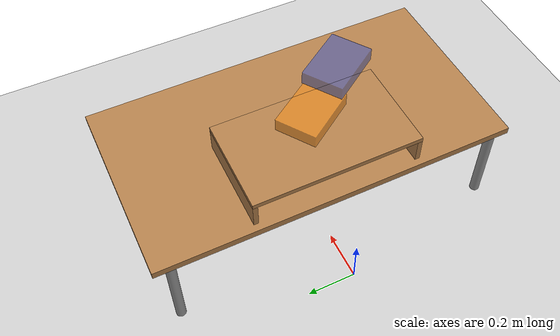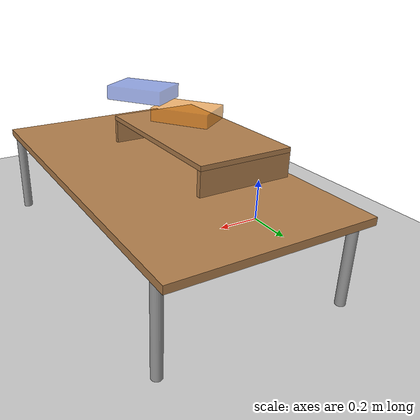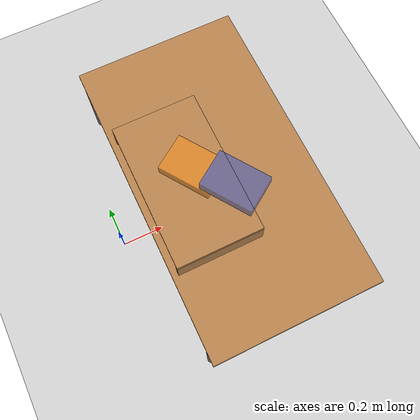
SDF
<sdf version="1.5">
 <world name="default">
  <include><uri>model://sun</uri></include>
  <include><uri>model://ground_plane</uri></include>
  <include><uri>model://table_alt</uri><pose>0.530772 0 0 0 0 -1.57</pose></include>
  <include><uri>model://shelf_alt</uri><pose>0.359608 0 0.38 0 0 -1.57</pose></include>
  <include><uri>model://box_alt</uri><pose>0.4 0.0 0.55 0 0 -0.97</pose></include>
 </world>
</sdf>

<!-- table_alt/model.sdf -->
<sdf version="1.5">
  <model name="table_alt">
    <static>true</static>
    <link name="table_root_link">
      <collision name="table_surface_collision">
	<pose>0 0 0.365 0 0 0</pose>
	<geometry>
          <box>
            <size>1.5 0.8 0.03</size>
          </box>
	</geometry>
	<surface>
          <friction>
            <ode>
              <mu>0.1</mu>
              <mu2>0.1</mu2>
            </ode>
          </friction>
	</surface>
      </collision>
      <visual name="table_surface_visual">
	<pose>0 0 0.365 0 0 0</pose>
	<geometry>
          <box>
            <size>1.5 0.8 0.03</size>
          </box>
	</geometry>
	<material>
          <script>
            <uri>file://media/materials/scripts/gazebo.material</uri>
            <name>Gazebo/Wood</name>
          </script>
	</material>
      </visual>
      <collision name="front_left_leg">
        <pose>0.68 0.38 0.175 0 0 0</pose>
        <geometry>
          <cylinder>
            <radius>0.02</radius>
            <length>0.35</length>
          </cylinder>
        </geometry>
      </collision>
      <visual name="front_left_leg">
        <pose>0.68 0.38 0.175 0 0 0</pose>
        <geometry>
          <cylinder>
            <radius>0.02</radius>
            <length>0.35</length>
          </cylinder>
        </geometry>
        <material>
          <script>
            <uri>file://media/materials/scripts/gazebo.material</uri>
            <name>Gazebo/Grey</name>
          </script>
        </material>
      </visual>
      <collision name="front_right_leg">
        <pose>0.68 -0.38 0.175 0 0 0</pose>
        <geometry>
          <cylinder>
            <radius>0.02</radius>
            <length>0.35</length>
          </cylinder>
        </geometry>
      </collision>
      <visual name="front_right_leg">
        <pose>0.68 -0.38 0.175 0 0 0</pose>
        <geometry>
          <cylinder>
            <radius>0.02</radius>
            <length>0.35</length>
          </cylinder>
        </geometry>
        <material>
          <script>
            <uri>file://media/materials/scripts/gazebo.material</uri>
            <name>Gazebo/Grey</name>
          </script>
        </material>
      </visual>
      <collision name="back_right_leg">
        <pose>-0.68 -0.38 0.175 0 0 0</pose>
        <geometry>
          <cylinder>
            <radius>0.02</radius>
            <length>0.35</length>
          </cylinder>
        </geometry>
      </collision>
      <visual name="back_right_leg">
        <pose>-0.68 -0.38 0.175 0 0 0</pose>
        <geometry>
          <cylinder>
            <radius>0.02</radius>
            <length>0.35</length>
          </cylinder>
        </geometry>
        <material>
          <script>
            <uri>file://media/materials/scripts/gazebo.material</uri>
            <name>Gazebo/Grey</name>
          </script>
        </material>
      </visual>
      <collision name="back_left_leg">
        <pose>-0.68 0.38 0.175 0 0 0</pose>
        <geometry>
          <cylinder>
            <radius>0.02</radius>
            <length>0.35</length>
          </cylinder>
        </geometry>
      </collision>
      <visual name="back_left_leg">
        <pose>-0.68 0.38 0.175 0 0 0</pose>
        <geometry>
          <cylinder>
            <radius>0.02</radius>
            <length>0.35</length>
          </cylinder>
        </geometry>
        <material>
          <script>
            <uri>file://media/materials/scripts/gazebo.material</uri>
            <name>Gazebo/Grey</name>
          </script>
        </material>
      </visual>
    </link>
  </model>
</sdf>

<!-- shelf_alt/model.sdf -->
<sdf version="1.5">
  <model name="shelf">
    <static>true</static>
    <link name="shelf_root_link">
      <collision name="shelf_surface_collision">
	<pose>0 0 0.11 0 0 0</pose>
	<geometry>
          <box>
            <size>0.7 0.4 0.02</size>
          </box>
	</geometry>
	<surface>
          <friction>
            <ode>
              <mu>0.4</mu>
              <mu2>0.4</mu2>
            </ode>
          </friction>
	</surface>
      </collision>
      <visual name="shelf_surface_visual">
	<pose>0 0 0.11 0 0 0</pose>
	<geometry>
          <box>
            <size>0.7 0.4 0.02</size>
          </box>
	</geometry>
	<material>
          <script>
            <uri>file://media/materials/scripts/gazebo.material</uri>
            <name>Gazebo/Wood</name>
          </script>
	</material>
      </visual>
      <visual name="left_support_visual">
	<pose>-0.33999999999999997 0.0 0.05 0 0 0</pose>
	<geometry>
          <box>
            <size>0.02 0.4 0.1</size>
          </box>
	</geometry>
	<material>
          <script>
            <uri>file://media/materials/scripts/gazebo.material</uri>
            <name>Gazebo/Wood</name>
          </script>
	</material>
      </visual>
      <visual name="right_support_visual">
	<pose>0.33999999999999997 0.0 0.05 0 0 0</pose>
	<geometry>
          <box>
            <size>0.02 0.4 0.1</size>
          </box>
	</geometry>
	<material>
          <script>
            <uri>file://media/materials/scripts/gazebo.material</uri>
            <name>Gazebo/Wood</name>
          </script>
	</material>
      </visual>
    </link>
  </model>
</sdf>

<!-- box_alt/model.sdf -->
<sdf version="1.5">
  <model name='box_alt'>
    <link name='box_alt_root_link'>
      <pose>0 0 0.0275 0 0 0</pose>
      <inertial>
	<!-- CoM -->
	<pose>0.0 0.0 0.0</pose>
        <mass>0.8</mass>
        <inertia>
          <ixx>0.002128333333333334</ixx>
          <ixy>0.0</ixy>
          <ixz>0.0</ixz>
          <iyy>0.0040416666666666665</iyy>
          <iyz>0.0</iyz>
          <izz>0.005766666666666667</izz>
        </inertia>
      </inertial>
      <collision name='box_alt_collision'>
        <geometry>
	  <box>
	    <size>0.24 0.17 0.055</size>
	  </box>
        </geometry>
      </collision>
      <visual name='box_alt_visual'>
        <geometry>
	  <box>
	    <size>0.24 0.17 0.055</size>
	  </box>
        </geometry>
        <material>
	  <script>
	    <uri>file://media/materials/scripts/gazebo.material</uri>
	    <name>Gazebo/Orange</name>
	  </script>
        </material>
	<transparency>0.4</transparency>
      </visual>
    </link>
    <link name="box_alt_estimate_link">
      <pose>0.2 0 0.0932 0 0 0</pose>
      <gravity>false</gravity>
      <kinematic>true</kinematic>
      <visual name='box_alt_estimate_visual'>
	<plugin name="viewer" filename='libgazebo_yarp_estimateViewer.so'>
	  <!-- local port is composed as /model_name/clientLocalPortSuffix -->
	  <clientLocalPortSuffix>/estimate_viewer/transformClient:i</clientLocalPortSuffix>
	  <sourceFrameName>/inertial</sourceFrameName>
	  <!-- target frame name is composed as /model_name/targetFrameNameSuffix -->
	  <targetFrameNameSuffix>estimate/frame</targetFrameNameSuffix>
	</plugin>
        <geometry>
	  <box>
	    <size>0.24 0.17 0.055</size>
	  </box>
        </geometry>
        <material>
	  <script>
	    <uri>file://media/materials/scripts/gazebo.material</uri>
	    <name>Gazebo/Blue</name>
	  </script>
        </material>
	<transparency>0.5</transparency>
      </visual>
    </link>
    <joint name="fixed_estimate" type="fixed">
      <parent>world</parent>
      <child>box_alt_estimate_link</child>
    </joint>
    <plugin name="pose_publisher" filename='libgazebo_yarp_modelposepublisher.so'>
      <period>0.01</period>
    </plugin>
    <plugin name="point_cloud" filename='libgazebo_yarp_fakePointCloud.so'>
      <period>0.5</period>
      <observerOrigin>0 0.07 0.93</observerOrigin>
      <numPoints>100</numPoints>
      <meshPath>model://box_alt/box.off</meshPath>
      <outputPortSuffix>fakepointcloud:o</outputPortSuffix>
      <enableNoise>true</enableNoise>
      <noiseMean>0.0</noiseMean>
      <noiseStd>0.0055</noiseStd>
      <showPointCloud>true</showPointCloud>
      <pointCloudColour>Gazebo/RedTransparent</pointCloudColour>
    </plugin>
  </model>
</sdf>
